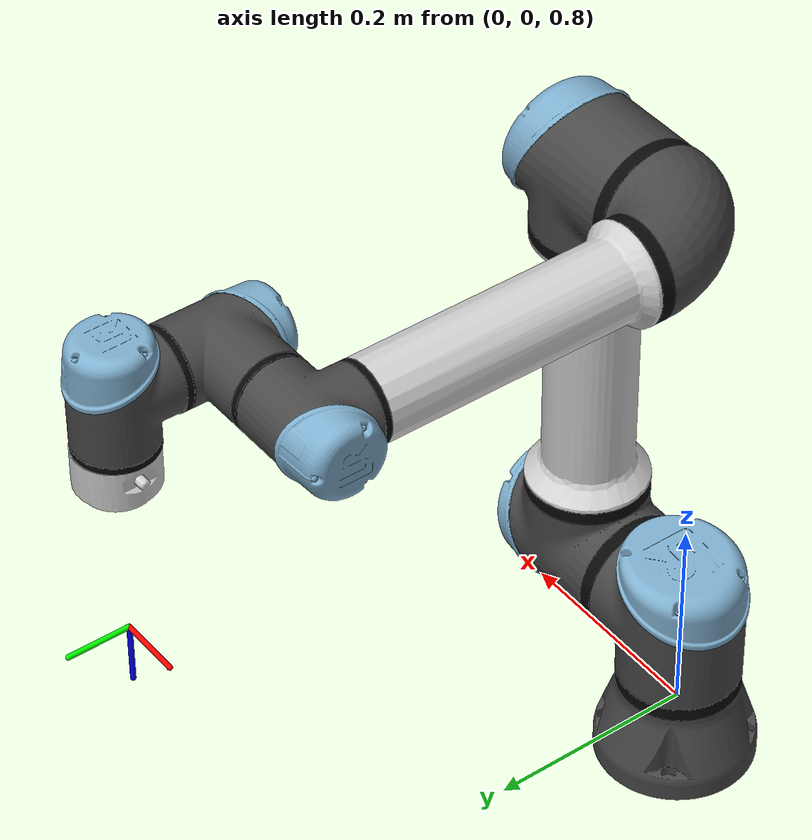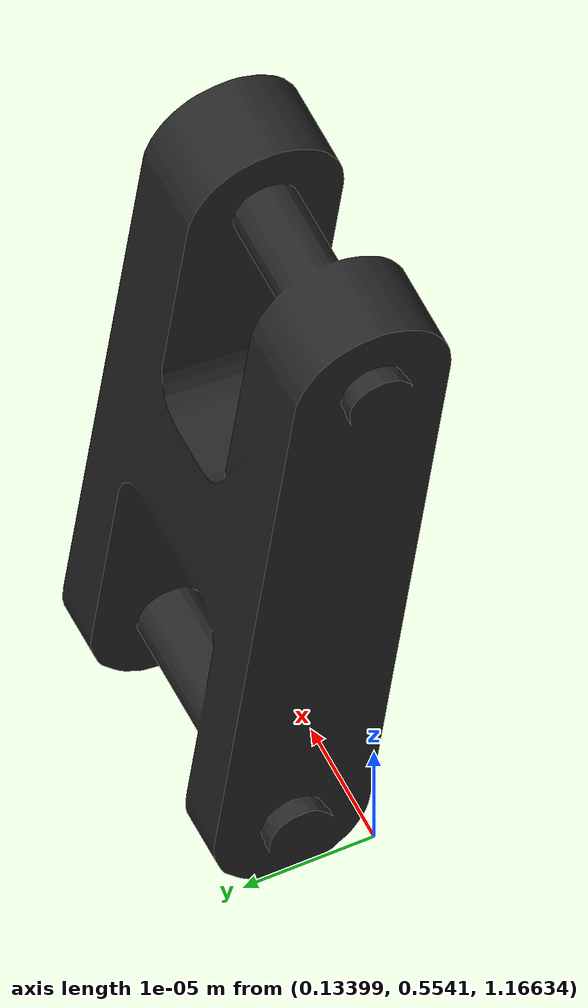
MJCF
<mujoco model="ur5e_2f85_robot">
  <default>
    <default class="ur5e">
      <material specular="0.5" shininess="0.25"/>
      <joint axis="0 1 0" range="-6.28319 6.28319" armature="0.1"/>
      <general gaintype="fixed" biastype="affine" ctrlrange="-6.2831 6.2831" gainprm="2000" biasprm="0 -2000 -400"
        forcerange="-150 150"/>
      <default class="size3">
        <default class="size3_limited">
          <joint range="-1.57079632679 4.71238898038"/>
          <general ctrlrange="-1.57079632679 4.71238898038"/>
        </default>
      </default>
      <default class="size1">
        <general gainprm="500" biasprm="0 -500 -100" forcerange="-28 28"/>
      </default>
      <default class="visual">
        <geom type="mesh" contype="0" conaffinity="0" group="2"/>
      </default>
      <default class="collision">
        <geom type="capsule" group="3"/>
        <default class="eef_collision">
          <geom type="cylinder"/>
        </default>
      </default>
      <site size="0.001" rgba="0.5 0.5 0.5 0.3" group="4"/>
    </default>

    <default class="2f85">
      <mesh scale="0.001 0.001 0.001"/>
      <general biastype="affine"/>
      <joint axis="1 0 0"/>
      <default class="driver">
        <joint range="0 0.8" armature="0.005" damping="0.1" solimplimit="0.95 0.99 0.001" solreflimit="0.005 1"/>
      </default>
      <default class="follower">
        <joint range="-0.872664 0.872664" armature="0.001" pos="0 -0.018 0.0065" solimplimit="0.95 0.99 0.001"
          solreflimit="0.005 1"/>
      </default>
      <default class="spring_link">
        <joint range="-0.29670597283 0.8" armature="0.001" stiffness="0.05" springref="2.62" damping="0.00125"/>
      </default>
      <default class="coupler">
        <joint range="-1.57 0" armature="0.001" solimplimit="0.95 0.99 0.001" solreflimit="0.005 1"/>
      </default>
      <default class="gripper_visual">
        <geom type="mesh" contype="0" conaffinity="0" group="2"/>
      </default>
      <default class="gripper_collision">
        <geom type="mesh" group="3"/>
        <default class="gripper_pad_box1">
          <geom mass="0" type="box" pos="0 -0.0026 0.028125" size="0.011 0.004 0.009375" friction="0.7"
            solimp="0.95 0.99 0.001" solref="0.004 1" priority="1" rgba="0.55 0.55 0.55 1"/>
        </default>
        <default class="gripper_pad_box2">
          <geom mass="0" type="box" pos="0 -0.0026 0.009375" size="0.011 0.004 0.009375" friction="0.6"
            solimp="0.95 0.99 0.001" solref="0.004 1" priority="1" rgba="0.45 0.45 0.45 1"/>
        </default>
      </default>
    </default>
  </default>

  <asset>
    <material class="ur5e" name="black" rgba="0.033 0.033 0.033 1"/>
    <material class="ur5e" name="jointgray" rgba="0.278 0.278 0.278 1"/>
    <material class="ur5e" name="linkgray" rgba="0.82 0.82 0.82 1"/>
    <material class="ur5e" name="urblue" rgba="0.49 0.678 0.8 1"/>

    <material name="gripper_metal" rgba="0.58 0.58 0.58 1"/>
    <material name="gripper_silicone" rgba="0.1882 0.1882 0.1882 1"/>
    <material name="gripper_gray" rgba="0.4627 0.4627 0.4627 1"/>
    <material name="gripper_black" rgba="0.149 0.149 0.149 1"/>

    <mesh file="official/universal_robots_ur5e/assets/base_0.obj"/>
    <mesh file="official/universal_robots_ur5e/assets/base_1.obj"/>
    <mesh file="official/universal_robots_ur5e/assets/shoulder_0.obj"/>
    <mesh file="official/universal_robots_ur5e/assets/shoulder_1.obj"/>
    <mesh file="official/universal_robots_ur5e/assets/shoulder_2.obj"/>
    <mesh file="official/universal_robots_ur5e/assets/upperarm_0.obj"/>
    <mesh file="official/universal_robots_ur5e/assets/upperarm_1.obj"/>
    <mesh file="official/universal_robots_ur5e/assets/upperarm_2.obj"/>
    <mesh file="official/universal_robots_ur5e/assets/upperarm_3.obj"/>
    <mesh file="official/universal_robots_ur5e/assets/forearm_0.obj"/>
    <mesh file="official/universal_robots_ur5e/assets/forearm_1.obj"/>
    <mesh file="official/universal_robots_ur5e/assets/forearm_2.obj"/>
    <mesh file="official/universal_robots_ur5e/assets/forearm_3.obj"/>
    <mesh file="official/universal_robots_ur5e/assets/wrist1_0.obj"/>
    <mesh file="official/universal_robots_ur5e/assets/wrist1_1.obj"/>
    <mesh file="official/universal_robots_ur5e/assets/wrist1_2.obj"/>
    <mesh file="official/universal_robots_ur5e/assets/wrist2_0.obj"/>
    <mesh file="official/universal_robots_ur5e/assets/wrist2_1.obj"/>
    <mesh file="official/universal_robots_ur5e/assets/wrist2_2.obj"/>
    <mesh file="official/universal_robots_ur5e/assets/wrist3.obj"/>

    <mesh class="2f85" name="gripper_base_mount_mesh" file="official/robotiq_2f85/assets/base_mount.stl"/>
    <mesh class="2f85" name="gripper_base_mesh" file="official/robotiq_2f85/assets/base.stl"/>
    <mesh class="2f85" name="gripper_driver_mesh" file="official/robotiq_2f85/assets/driver.stl"/>
    <mesh class="2f85" name="gripper_coupler_mesh" file="official/robotiq_2f85/assets/coupler.stl"/>
    <mesh class="2f85" name="gripper_follower_mesh" file="official/robotiq_2f85/assets/follower.stl"/>
    <mesh class="2f85" name="gripper_pad_mesh" file="official/robotiq_2f85/assets/pad.stl"/>
    <mesh class="2f85" name="gripper_silicone_pad_mesh" file="official/robotiq_2f85/assets/silicone_pad.stl"/>
    <mesh class="2f85" name="gripper_spring_link_mesh" file="official/robotiq_2f85/assets/spring_link.stl"/>
  </asset>

  <worldbody>
    <body name="base" pos="0 0 0.74" quat="1 0 0 0" childclass="ur5e">
      <inertial mass="4.0" pos="0 0 0" diaginertia="0.00443333156 0.00443333156 0.0072"/>
      <geom mesh="base_0" material="black" class="visual"/>
      <geom mesh="base_1" material="jointgray" class="visual"/>
      <body name="shoulder_link" pos="0 0 0.163" quat="0.70710678 0 0 -0.70710678">
        <inertial mass="3.7" pos="0 0 0" diaginertia="0.0102675 0.0102675 0.00666"/>
        <joint name="shoulder_pan_joint" class="size3" axis="0 0 1"/>
        <geom mesh="shoulder_0" material="urblue" class="visual"/>
        <geom mesh="shoulder_1" material="black" class="visual"/>
        <geom mesh="shoulder_2" material="jointgray" class="visual"/>
        <geom class="collision" size="0.06 0.06" pos="0 0 -0.04"/>
        <body name="upper_arm_link" pos="0 0.138 0">
          <inertial mass="8.393" pos="0 0 0.2125" diaginertia="0.133886 0.133886 0.0151074"/>
          <joint name="shoulder_lift_joint" class="size3"/>
          <geom mesh="upperarm_0" material="linkgray" class="visual"/>
          <geom mesh="upperarm_1" material="black" class="visual"/>
          <geom mesh="upperarm_2" material="jointgray" class="visual"/>
          <geom mesh="upperarm_3" material="urblue" class="visual"/>
          <geom class="collision" pos="0 -0.04 0" quat="1 1 0 0" size="0.06 0.06"/>
          <geom class="collision" size="0.05 0.2" pos="0 0 0.2"/>
          <body name="forearm_link" pos="0 -0.131 0.425" quat="0.70710678 0 -0.70710678 0">
            <inertial mass="2.275" pos="0 0 0.196" diaginertia="0.0311796 0.0311796 0.004095"/>
            <joint name="elbow_joint" class="size3_limited"/>
            <geom mesh="forearm_0" material="urblue" class="visual"/>
            <geom mesh="forearm_1" material="linkgray" class="visual"/>
            <geom mesh="forearm_2" material="black" class="visual"/>
            <geom mesh="forearm_3" material="jointgray" class="visual"/>
            <geom class="collision" pos="0 0.08 0" quat="1 1 0 0" size="0.055 0.06"/>
            <geom class="collision" size="0.038 0.19" pos="0 0 0.2"/>
            <body name="wrist_1_link" pos="0 0 0.392">
              <inertial mass="1.219" pos="0 0.127 0" diaginertia="0.0025599 0.0025599 0.0021942"/>
              <joint name="wrist_1_joint" class="size1"/>
              <geom mesh="wrist1_0" material="black" class="visual"/>
              <geom mesh="wrist1_1" material="urblue" class="visual"/>
              <geom mesh="wrist1_2" material="jointgray" class="visual"/>
              <geom class="collision" pos="0 0.05 0" quat="1 1 0 0" size="0.04 0.07"/>
              <body name="wrist_2_link" pos="0 0.127 0" quat="0.70710678 0 0 0.70710678">
                <inertial mass="1.219" pos="0 0 0.1" diaginertia="0.0025599 0.0025599 0.0021942"/>
                <joint name="wrist_2_joint" axis="0 0 1" class="size1"/>
                <geom mesh="wrist2_0" material="black" class="visual"/>
                <geom mesh="wrist2_1" material="urblue" class="visual"/>
                <geom mesh="wrist2_2" material="jointgray" class="visual"/>
                <geom class="collision" size="0.04 0.06" pos="0 0 0.04"/>
                <geom class="collision" pos="0 0.02 0.1" quat="1 1 0 0" size="0.04 0.04"/>
                <body name="wrist_3_link" pos="0 0 0.1" quat="0.70710678 0 -0.70710678 0">
                  <inertial mass="0.1889" pos="0 0.0771683 0" quat="1 0 0 1"
                    diaginertia="0.000132134 9.90863e-05 9.90863e-05"/>
                  <joint name="wrist_3_joint" class="size1"/>
                  <geom material="linkgray" mesh="wrist3" class="visual"/>
                  <geom class="eef_collision" pos="0 0.08 0" quat="1 1 0 0" size="0.04 0.02"/>
                  <site name="attachment_site" pos="0 0.1 0" quat="-1 1 0 0"/>

                  <body name="gripper_mount" pos="0 0.1 0" quat="-1 1 0 0">
                    <body name="gripper_base_mount" pos="0 0 0.007" childclass="2f85">
                      <geom class="gripper_visual" mesh="gripper_base_mount_mesh" material="gripper_black"/>
                      <geom class="gripper_collision" mesh="gripper_base_mount_mesh"/>
                      <body name="gripper_base" pos="0 0 0.0038" quat="1 0 0 -1">
                        <inertial mass="0.777441" pos="0 -2.70394e-05 0.0354675" quat="1 -0.00152849 0 0"
                          diaginertia="0.000260285 0.000225381 0.000152708"/>
                        <geom class="gripper_visual" mesh="gripper_base_mesh" material="gripper_black"/>
                        <geom class="gripper_collision" mesh="gripper_base_mesh"/>
                        <site name="pinch" pos="0 0 0.145" type="sphere" group="5" rgba="0.9 0.9 0.9 1" size="0.005"/>
                        <body name="tool_frame" pos="0 0 0.145">
                          <site name="tool_frame_site" size="0.008" group="6" rgba="1 1 1 0.25"/>
                          <geom name="tool_x_axis" type="capsule" fromto="0 0 0 0.06 0 0" size="0.0025" contype="0"
                            conaffinity="0" rgba="1 0 0 1"/>
                          <geom name="tool_y_axis" type="capsule" fromto="0 0 0 0 0.06 0" size="0.0025" contype="0"
                            conaffinity="0" rgba="0 1 0 1"/>
                          <geom name="tool_z_axis" type="capsule" fromto="0 0 0 0 0 0.06" size="0.0025" contype="0"
                            conaffinity="0" rgba="0 0 1 1"/>
                        </body>

                        <body name="gripper_right_driver" pos="0 0.0306011 0.054904">
                          <inertial mass="0.00899563" pos="2.96931e-12 0.0177547 0.00107314" quat="0.681301 0.732003 0 0"
                            diaginertia="1.72352e-06 1.60906e-06 3.22006e-07"/>
                          <joint name="right_driver_joint" class="driver"/>
                          <geom class="gripper_visual" mesh="gripper_driver_mesh" material="gripper_gray"/>
                          <geom class="gripper_collision" mesh="gripper_driver_mesh"/>
                          <body name="gripper_right_coupler" pos="0 0.0315 -0.0041">
                            <inertial mass="0.0140974" pos="0 0.00301209 0.0232175"
                              quat="0.705636 -0.0455904 0.0455904 0.705636"
                              diaginertia="4.16206e-06 3.52216e-06 8.88131e-07"/>
                            <joint name="right_coupler_joint" class="coupler"/>
                            <geom class="gripper_visual" mesh="gripper_coupler_mesh" material="gripper_black"/>
                            <geom class="gripper_collision" mesh="gripper_coupler_mesh"/>
                          </body>
                        </body>

                        <body name="gripper_right_spring_link" pos="0 0.0132 0.0609">
                          <inertial mass="0.0221642" pos="-8.65005e-09 0.0181624 0.0212658"
                            quat="0.663403 -0.244737 0.244737 0.663403"
                            diaginertia="8.96853e-06 6.71733e-06 2.63931e-06"/>
                          <joint name="right_spring_link_joint" class="spring_link"/>
                          <geom class="gripper_visual" mesh="gripper_spring_link_mesh" material="gripper_black"/>
                          <geom class="gripper_collision" mesh="gripper_spring_link_mesh"/>
                          <body name="gripper_right_follower" pos="0 0.055 0.0375">
                            <inertial mass="0.0125222" pos="0 -0.011046 0.0124786" quat="1 0.1664 0 0"
                              diaginertia="2.67415e-06 2.4559e-06 6.02031e-07"/>
                            <joint name="right_follower_joint" class="follower"/>
                            <geom class="gripper_visual" mesh="gripper_follower_mesh" material="gripper_black"/>
                            <geom class="gripper_collision" mesh="gripper_follower_mesh"/>
                            <body name="gripper_right_pad" pos="0 -0.0189 0.01352">
                              <geom class="gripper_pad_box1" name="right_pad1"/>
                              <geom class="gripper_pad_box2" name="right_pad2"/>
                              <inertial mass="0.0035" pos="0 -0.0025 0.0185" quat="0.707107 0 0 0.707107"
                                diaginertia="4.73958e-07 3.64583e-07 1.23958e-07"/>
                              <geom class="gripper_visual" mesh="gripper_pad_mesh" material="gripper_gray"/>
                              <body name="gripper_right_silicone_pad">
                                <geom class="gripper_visual" mesh="gripper_silicone_pad_mesh" material="gripper_black"/>
                              </body>
                            </body>
                          </body>
                        </body>

                        <body name="gripper_left_driver" pos="0 -0.0306011 0.054904" quat="0 0 0 1">
                          <inertial mass="0.00899563" pos="0 0.0177547 0.00107314" quat="0.681301 0.732003 0 0"
                            diaginertia="1.72352e-06 1.60906e-06 3.22006e-07"/>
                          <joint name="left_driver_joint" class="driver"/>
                          <geom class="gripper_visual" mesh="gripper_driver_mesh" material="gripper_gray"/>
                          <geom class="gripper_collision" mesh="gripper_driver_mesh"/>
                          <body name="gripper_left_coupler" pos="0 0.0315 -0.0041">
                            <inertial mass="0.0140974" pos="0 0.00301209 0.0232175"
                              quat="0.705636 -0.0455904 0.0455904 0.705636"
                              diaginertia="4.16206e-06 3.52216e-06 8.88131e-07"/>
                            <joint name="left_coupler_joint" class="coupler"/>
                            <geom class="gripper_visual" mesh="gripper_coupler_mesh" material="gripper_black"/>
                            <geom class="gripper_collision" mesh="gripper_coupler_mesh"/>
                          </body>
                        </body>

                        <body name="gripper_left_spring_link" pos="0 -0.0132 0.0609" quat="0 0 0 1">
                          <inertial mass="0.0221642" pos="-8.65005e-09 0.0181624 0.0212658"
                            quat="0.663403 -0.244737 0.244737 0.663403"
                            diaginertia="8.96853e-06 6.71733e-06 2.63931e-06"/>
                          <joint name="left_spring_link_joint" class="spring_link"/>
                          <geom class="gripper_visual" mesh="gripper_spring_link_mesh" material="gripper_black"/>
                          <geom class="gripper_collision" mesh="gripper_spring_link_mesh"/>
                          <body name="gripper_left_follower" pos="0 0.055 0.0375">
                            <inertial mass="0.0125222" pos="0 -0.011046 0.0124786" quat="1 0.1664 0 0"
                              diaginertia="2.67415e-06 2.4559e-06 6.02031e-07"/>
                            <joint name="left_follower_joint" class="follower"/>
                            <geom class="gripper_visual" mesh="gripper_follower_mesh" material="gripper_black"/>
                            <geom class="gripper_collision" mesh="gripper_follower_mesh"/>
                            <body name="gripper_left_pad" pos="0 -0.0189 0.01352">
                              <geom class="gripper_pad_box1" name="left_pad1"/>
                              <geom class="gripper_pad_box2" name="left_pad2"/>
                              <inertial mass="0.0035" pos="0 -0.0025 0.0185" quat="1 0 0 1"
                                diaginertia="4.73958e-07 3.64583e-07 1.23958e-07"/>
                              <geom class="gripper_visual" mesh="gripper_pad_mesh" material="gripper_gray"/>
                              <body name="gripper_left_silicone_pad">
                                <geom class="gripper_visual" mesh="gripper_silicone_pad_mesh" material="gripper_black"/>
                              </body>
                            </body>
                          </body>
                        </body>
                      </body>
                    </body>
                  </body>
                </body>
              </body>
            </body>
          </body>
        </body>
      </body>
    </body>
  </worldbody>

  <contact>
    <exclude body1="gripper_base" body2="gripper_left_driver"/>
    <exclude body1="gripper_base" body2="gripper_right_driver"/>
    <exclude body1="gripper_base" body2="gripper_left_spring_link"/>
    <exclude body1="gripper_base" body2="gripper_right_spring_link"/>
    <exclude body1="gripper_right_coupler" body2="gripper_right_follower"/>
    <exclude body1="gripper_left_coupler" body2="gripper_left_follower"/>
  </contact>

  <tendon>
    <fixed name="split">
      <joint joint="right_driver_joint" coef="0.5"/>
      <joint joint="left_driver_joint" coef="0.5"/>
    </fixed>
  </tendon>

  <equality>
    <connect anchor="0 0 0" body1="gripper_right_follower" body2="gripper_right_coupler"
      solimp="0.95 0.99 0.001" solref="0.005 1"/>
    <connect anchor="0 0 0" body1="gripper_left_follower" body2="gripper_left_coupler"
      solimp="0.95 0.99 0.001" solref="0.005 1"/>
    <joint joint1="right_driver_joint" joint2="left_driver_joint" polycoef="0 1 0 0 0"
      solimp="0.95 0.99 0.001" solref="0.005 1"/>
  </equality>

  <actuator>
    <general class="size3" name="shoulder_pan" joint="shoulder_pan_joint"/>
    <general class="size3" name="shoulder_lift" joint="shoulder_lift_joint"/>
    <general class="size3_limited" name="elbow" joint="elbow_joint"/>
    <general class="size1" name="wrist_1" joint="wrist_1_joint"/>
    <general class="size1" name="wrist_2" joint="wrist_2_joint"/>
    <general class="size1" name="wrist_3" joint="wrist_3_joint"/>
    <general class="2f85" name="fingers_actuator" tendon="split" forcerange="-5 5" ctrlrange="0 255"
      gainprm="0.3137255 0 0" biasprm="0 -100 -10"/>
  </actuator>
</mujoco>
